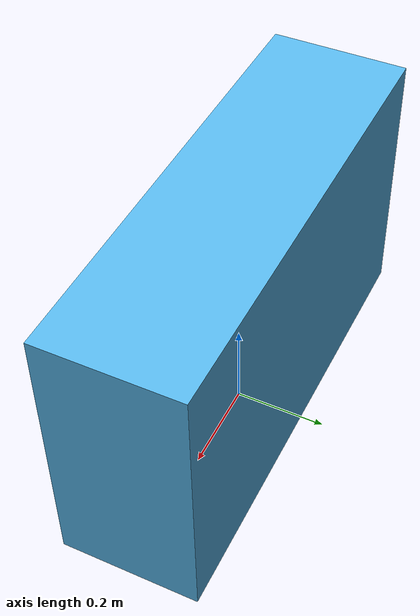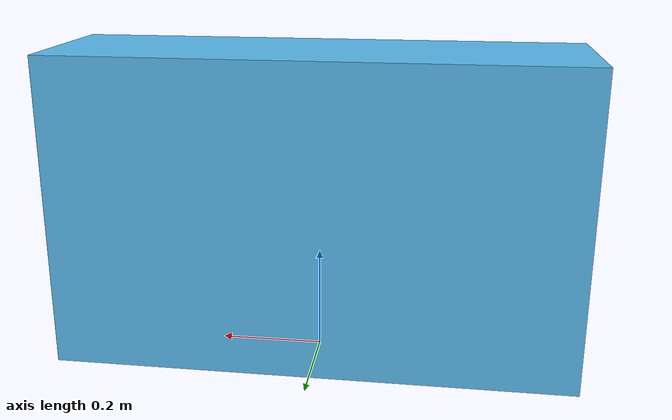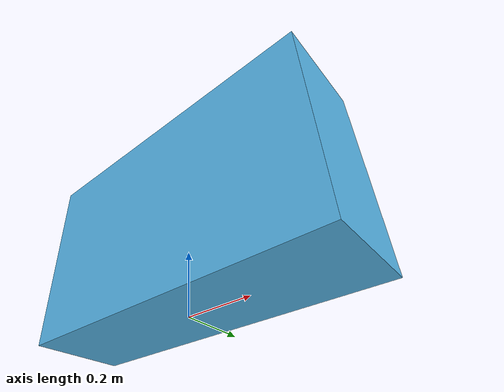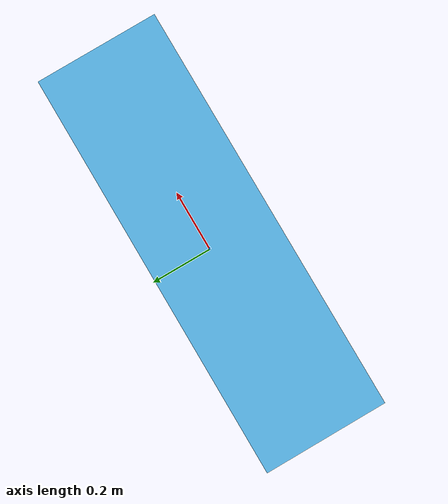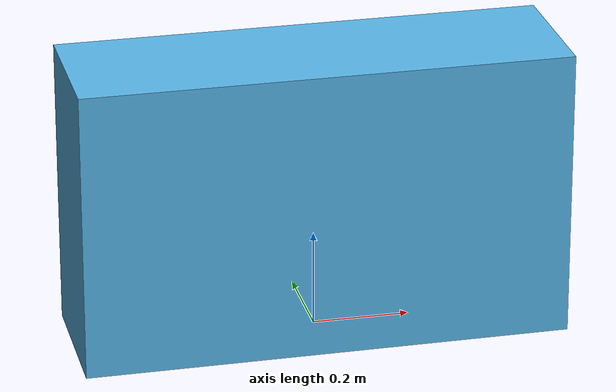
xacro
<?xml version="1.0"?>

<robot xmlns:xacro="http://www.ros.org/wiki/xacro" name="differential_drive_robot">

<!--- Constants -->
<xacro:property name="pi" value="3.14159265" />

<!--- Body dimensions -->
<xacro:property name="a" value="1" />
<xacro:property name="b" value="0.3" />
<xacro:property name="c" value="0.6" />

<!--- Wheel and castor dimensions -->
<xacro:property name="r" value="0.15" />
<xacro:property name="d" value="0.1" />

<xacro:property name="s1" value="${b/2+r}" />
<xacro:property name="s2" value="${2*r}" />
<xacro:property name="s3" value="${2*r}" />
<xacro:property name="s4" value="${c/2+d/2}" />

<!--- Densities -->
<xacro:property name="d1" value="2710.0" />
<xacro:property name="d2" value="2710.0" />
<xacro:property name="d3" value="2710.0" />

<!--- Masses-->
<!--- body -->
<xacro:property name="m1" value="${d1*a*b*c}" />
<!--- wheel -->
<xacro:property name="m2" value="${d2*pi*r*r*d}" />
<!--- caster -->
<xacro:property name="m3" value="${d3*(4.0/3.0)*pi*r*r*r}" />

<!--- Moments of inertia for the robot body -->
<xacro:property name="Ix_body" value="${(1/12)*m1*(b*b+c*c)}" />
<xacro:property name="Iy_body" value="${(1/12)*m1*(b*b+a*a)}" />
<xacro:property name="Iz_body" value="${(1/12)*m1*(a*a+c*c)}" />

<!--- Moments of inertia for the wheel -->
<xacro:property name="Iz_wheel" value="${0.5*m2*r*r}" />
<xacro:property name="I_wheel" value="${(1.0/12.0)*m2*(3.0*r*r+d*d)}" />

<!--- Moments of inertia for the caster sphere -->
<xacro:property name="I_castor" value="${(2.0/5.0)*m3*r*r}" />

<xacro:macro name="inertia_body">
    <inertial>
        <origin rpy="0 0 0" xyz="0 0 ${s1}"/>
        <mass value="${m1}"/>
        <inertia ixx="${Ix_body}" ixy="0.0" ixz="0.0" iyy="${Iy_body}" iyz="0.0" izz="${Iz_body}"/>
    </inertial>
</xacro:macro>

<xacro:macro name="inertia_wheel">
    <inertial>
        <origin rpy="1.570795 0 0" xyz="0 0 0" />
        <mass value="${m2}"/>
        <inertia ixx="${I_wheel}" ixy="0.0" ixz="0.0" iyy="${I_wheel}" iyz="0.0" izz="${Iz_wheel}"/>
    </inertial>
</xacro:macro>

<xacro:macro name="inertia_caster">
    <inertial>
        <origin rpy="0 0 0" xyz="0 0 0"/>
        <mass value="${m3}"/>
        <inertia ixx="${I_castor}" ixy="0.0" ixz="0.0" iyy="${I_castor}" iyz="0.0" izz="${I_castor}"/>
    </inertial>
</xacro:macro>

<xacro:include filename="$(find differential-drive-ws)/model/robot.gazebo" />

<link name="base_footprint"> </link>
<joint name="body_link_joint" type="fixed">
    <parent link="base_footprint"/>
    <child link="body_link"/>
</joint>

<link name="body_link">
    <visual>
        <geometry>
            <box size="${a} ${b} ${c}"/>
        </geometry>
        <origin rpy="0 0 0" xyz="0 0 ${s1}" />
    </visual>

    <collision>
        <geometry>
            <box size="${a} ${b} ${c}"/>
        </geometry>
        <origin rpy="0 0 0" xyz="0 0 ${s1}" />
    </collision>

    <xacro:inertia_body />
</link>

</robot>
